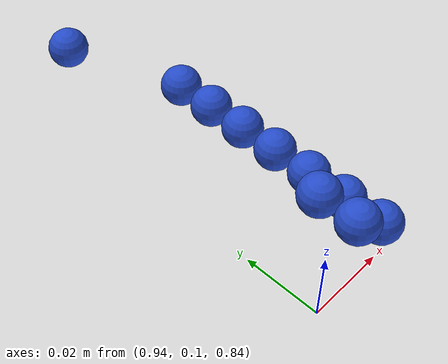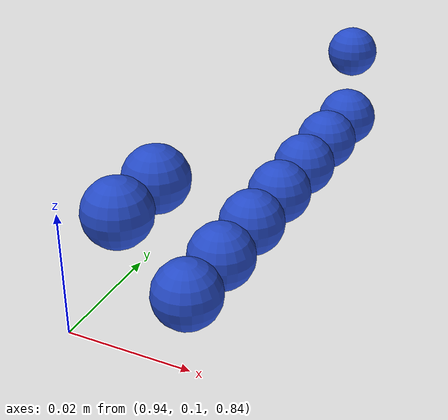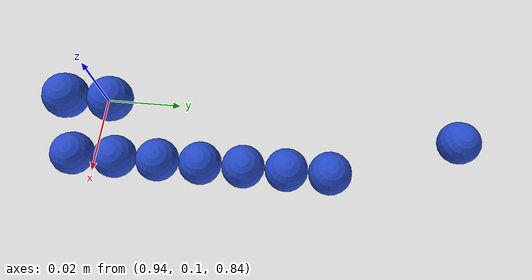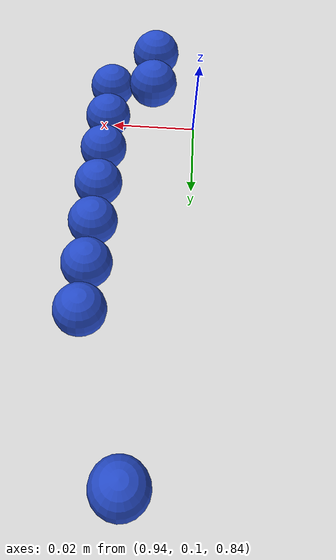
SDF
<sdf version="1.4">
 <world name="default">
  <include><uri>model://ground_plane</uri></include>
  <include><uri>model://sun</uri></include>
  <model name="ball_bearing_1">
   <link name="link">
    <pose>0 0 0.003 0 0 0</pose>
    <inertial>
     <mass>0.0011</mass>
     <inertia>
      <ixx>3.96e-09</ixx>
      <ixy>0</ixy>
      <ixz>0</ixz>
      <iyy>3.96e-09</iyy>
      <iyz>0</iyz>
      <izz>3.96e-09</izz>
     </inertia>
    </inertial>
    <collision name="collision">
     <geometry><sphere><radius>0.005</radius></sphere></geometry>
     <surface><contact><ode><max_vel>0.1</max_vel><min_depth>0.0001</min_depth></ode></contact></surface>
    </collision>
    <visual name="visual">
     <geometry><sphere><radius>0.005</radius></sphere></geometry>
     <material>
      <script><uri>file://media/materials/scripts/gazebo.material</uri><name>Gazebo/Blue</name></script>
     </material>
    </visual>
    <velocity_decay><linear>0</linear><angular>0.005</angular></velocity_decay>
   </link>
   <pose>0.96 0.1 0.85 0.0 0.0 0.0</pose>
  </model>
  <model name="ball_bearing_11">
   <link name="link">
    <pose>0 0 0.003 0 0 0</pose>
    <inertial>
     <mass>0.0011</mass>
     <inertia>
      <ixx>3.96e-09</ixx>
      <ixy>0</ixy>
      <ixz>0</ixz>
      <iyy>3.96e-09</iyy>
      <iyz>0</iyz>
      <izz>3.96e-09</izz>
     </inertia>
    </inertial>
    <collision name="collision">
     <geometry><sphere><radius>0.005</radius></sphere></geometry>
     <surface><contact><ode><max_vel>0.1</max_vel><min_depth>0.0001</min_depth></ode></contact></surface>
    </collision>
    <visual name="visual">
     <geometry><sphere><radius>0.005</radius></sphere></geometry>
     <material>
      <script><uri>file://media/materials/scripts/gazebo.material</uri><name>Gazebo/Blue</name></script>
     </material>
    </visual>
    <velocity_decay><linear>0</linear><angular>0.005</angular></velocity_decay>
   </link>
   <pose>0.96 0.11 0.85 0.0 0.0 0.0</pose>
  </model>
  <model name="ball_bearing_21">
   <link name="link">
    <pose>0 0 0.003 0 0 0</pose>
    <inertial>
     <mass>0.0011</mass>
     <inertia>
      <ixx>3.96e-09</ixx>
      <ixy>0</ixy>
      <ixz>0</ixz>
      <iyy>3.96e-09</iyy>
      <iyz>0</iyz>
      <izz>3.96e-09</izz>
     </inertia>
    </inertial>
    <collision name="collision">
     <geometry><sphere><radius>0.005</radius></sphere></geometry>
     <surface><contact><ode><max_vel>0.1</max_vel><min_depth>0.0001</min_depth></ode></contact></surface>
    </collision>
    <visual name="visual">
     <geometry><sphere><radius>0.005</radius></sphere></geometry>
     <material>
      <script><uri>file://media/materials/scripts/gazebo.material</uri><name>Gazebo/Blue</name></script>
     </material>
    </visual>
    <velocity_decay><linear>0</linear><angular>0.005</angular></velocity_decay>
   </link>
   <pose>0.96 0.12 0.85 0.0 0.0 0.0</pose>
  </model>
  <model name="ball_bearing_31">
   <link name="link">
    <pose>0 0 0.003 0 0 0</pose>
    <inertial>
     <mass>0.0011</mass>
     <inertia>
      <ixx>3.96e-09</ixx>
      <ixy>0</ixy>
      <ixz>0</ixz>
      <iyy>3.96e-09</iyy>
      <iyz>0</iyz>
      <izz>3.96e-09</izz>
     </inertia>
    </inertial>
    <collision name="collision">
     <geometry><sphere><radius>0.005</radius></sphere></geometry>
     <surface><contact><ode><max_vel>0.1</max_vel><min_depth>0.0001</min_depth></ode></contact></surface>
    </collision>
    <visual name="visual">
     <geometry><sphere><radius>0.005</radius></sphere></geometry>
     <material>
      <script><uri>file://media/materials/scripts/gazebo.material</uri><name>Gazebo/Blue</name></script>
     </material>
    </visual>
    <velocity_decay><linear>0</linear><angular>0.005</angular></velocity_decay>
   </link>
   <pose>0.96 0.13 0.85 0.0 0.0 0.0</pose>
  </model>
  <model name="ball_bearing_41">
   <link name="link">
    <pose>0 0 0.003 0 0 0</pose>
    <inertial>
     <mass>0.0011</mass>
     <inertia>
      <ixx>3.96e-09</ixx>
      <ixy>0</ixy>
      <ixz>0</ixz>
      <iyy>3.96e-09</iyy>
      <iyz>0</iyz>
      <izz>3.96e-09</izz>
     </inertia>
    </inertial>
    <collision name="collision">
     <geometry><sphere><radius>0.005</radius></sphere></geometry>
     <surface><contact><ode><max_vel>0.1</max_vel><min_depth>0.0001</min_depth></ode></contact></surface>
    </collision>
    <visual name="visual">
     <geometry><sphere><radius>0.005</radius></sphere></geometry>
     <material>
      <script><uri>file://media/materials/scripts/gazebo.material</uri><name>Gazebo/Blue</name></script>
     </material>
    </visual>
    <velocity_decay><linear>0</linear><angular>0.005</angular></velocity_decay>
   </link>
   <pose>0.96 0.14 0.85 0.0 0.0 0.0</pose>
  </model>
  <model name="ball_bearing_51">
   <link name="link">
    <pose>0 0 0.003 0 0 0</pose>
    <inertial>
     <mass>0.0011</mass>
     <inertia>
      <ixx>3.96e-09</ixx>
      <ixy>0</ixy>
      <ixz>0</ixz>
      <iyy>3.96e-09</iyy>
      <iyz>0</iyz>
      <izz>3.96e-09</izz>
     </inertia>
    </inertial>
    <collision name="collision">
     <geometry><sphere><radius>0.005</radius></sphere></geometry>
     <surface><contact><ode><max_vel>0.1</max_vel><min_depth>0.0001</min_depth></ode></contact></surface>
    </collision>
    <visual name="visual">
     <geometry><sphere><radius>0.005</radius></sphere></geometry>
     <material>
      <script><uri>file://media/materials/scripts/gazebo.material</uri><name>Gazebo/Blue</name></script>
     </material>
    </visual>
    <velocity_decay><linear>0</linear><angular>0.005</angular></velocity_decay>
   </link>
   <pose>0.96 0.15 0.85 0.0 0.0 0.0</pose>
  </model>
  <model name="ball_bearing_61">
   <link name="link">
    <pose>0 0 0.003 0 0 0</pose>
    <inertial>
     <mass>0.0011</mass>
     <inertia>
      <ixx>3.96e-09</ixx>
      <ixy>0</ixy>
      <ixz>0</ixz>
      <iyy>3.96e-09</iyy>
      <iyz>0</iyz>
      <izz>3.96e-09</izz>
     </inertia>
    </inertial>
    <collision name="collision">
     <geometry><sphere><radius>0.005</radius></sphere></geometry>
     <surface><contact><ode><max_vel>0.1</max_vel><min_depth>0.0001</min_depth></ode></contact></surface>
    </collision>
    <visual name="visual">
     <geometry><sphere><radius>0.005</radius></sphere></geometry>
     <material>
      <script><uri>file://media/materials/scripts/gazebo.material</uri><name>Gazebo/Blue</name></script>
     </material>
    </visual>
    <velocity_decay><linear>0</linear><angular>0.005</angular></velocity_decay>
   </link>
   <pose>0.96 0.16 0.85 0.0 0.0 0.0</pose>
  </model>
  <model name="ball_bearing_90">
   <link name="link">
    <pose>0 0 0.003 0 0 0</pose>
    <inertial>
     <mass>0.0011</mass>
     <inertia>
      <ixx>3.96e-09</ixx>
      <ixy>0</ixy>
      <ixz>0</ixz>
      <iyy>3.96e-09</iyy>
      <iyz>0</iyz>
      <izz>3.96e-09</izz>
     </inertia>
    </inertial>
    <collision name="collision">
     <geometry><sphere><radius>0.005</radius></sphere></geometry>
     <surface><contact><ode><max_vel>0.1</max_vel><min_depth>0.0001</min_depth></ode></contact></surface>
    </collision>
    <visual name="visual">
     <geometry><sphere><radius>0.005</radius></sphere></geometry>
     <material>
      <script><uri>file://media/materials/scripts/gazebo.material</uri><name>Gazebo/Blue</name></script>
     </material>
    </visual>
    <velocity_decay><linear>0</linear><angular>0.005</angular></velocity_decay>
   </link>
   <pose>0.95 0.19 0.85 0.0 0.0 0.0</pose>
  </model>
  <model name="ball_bearing_100">
   <link name="link">
    <pose>0 0 0.003 0 0 0</pose>
    <inertial>
     <mass>0.0011</mass>
     <inertia>
      <ixx>3.96e-09</ixx>
      <ixy>0</ixy>
      <ixz>0</ixz>
      <iyy>3.96e-09</iyy>
      <iyz>0</iyz>
      <izz>3.96e-09</izz>
     </inertia>
    </inertial>
    <collision name="collision">
     <geometry><sphere><radius>0.005</radius></sphere></geometry>
     <surface><contact><ode><max_vel>0.1</max_vel><min_depth>0.0001</min_depth></ode></contact></surface>
    </collision>
    <visual name="visual">
     <geometry><sphere><radius>0.005</radius></sphere></geometry>
     <material>
      <script><uri>file://media/materials/scripts/gazebo.material</uri><name>Gazebo/Blue</name></script>
     </material>
    </visual>
    <velocity_decay><linear>0</linear><angular>0.005</angular></velocity_decay>
   </link>
   <pose>0.95 0.1 0.86 0.0 0.0 0.0</pose>
  </model>
  <model name="ball_bearing_110">
   <link name="link">
    <pose>0 0 0.003 0 0 0</pose>
    <inertial>
     <mass>0.0011</mass>
     <inertia>
      <ixx>3.96e-09</ixx>
      <ixy>0</ixy>
      <ixz>0</ixz>
      <iyy>3.96e-09</iyy>
      <iyz>0</iyz>
      <izz>3.96e-09</izz>
     </inertia>
    </inertial>
    <collision name="collision">
     <geometry><sphere><radius>0.005</radius></sphere></geometry>
     <surface><contact><ode><max_vel>0.1</max_vel><min_depth>0.0001</min_depth></ode></contact></surface>
    </collision>
    <visual name="visual">
     <geometry><sphere><radius>0.005</radius></sphere></geometry>
     <material>
      <script><uri>file://media/materials/scripts/gazebo.material</uri><name>Gazebo/Blue</name></script>
     </material>
    </visual>
    <velocity_decay><linear>0</linear><angular>0.005</angular></velocity_decay>
   </link>
   <pose>0.95 0.11 0.86 0.0 0.0 0.0</pose>
  </model>
 </world>
</sdf>
